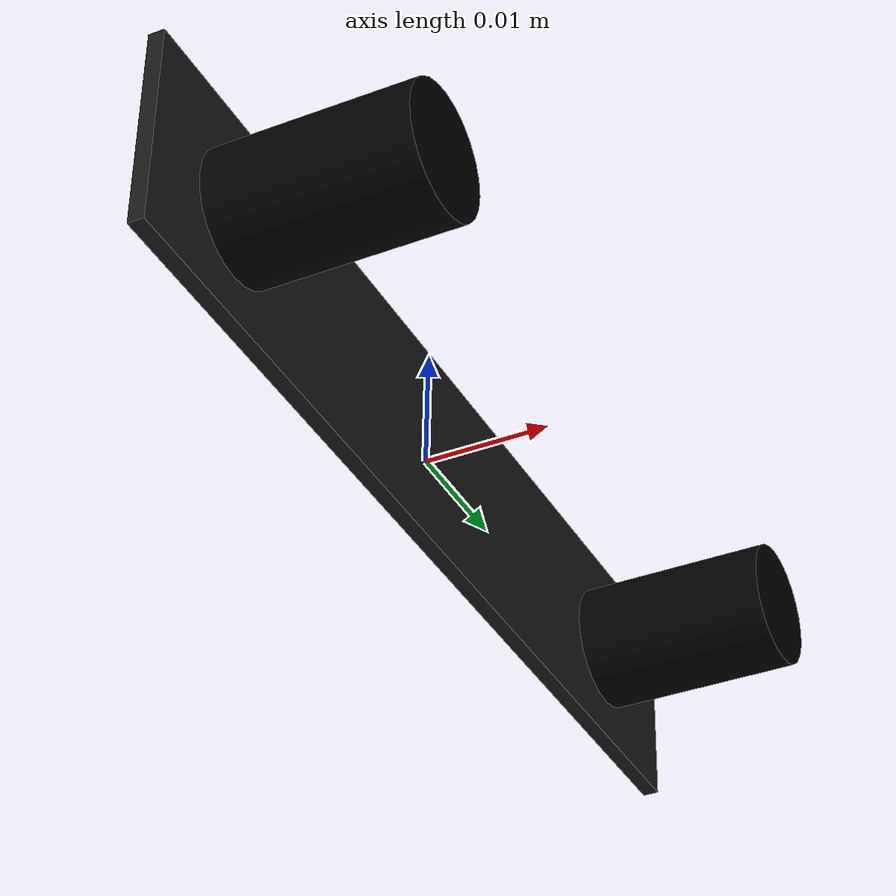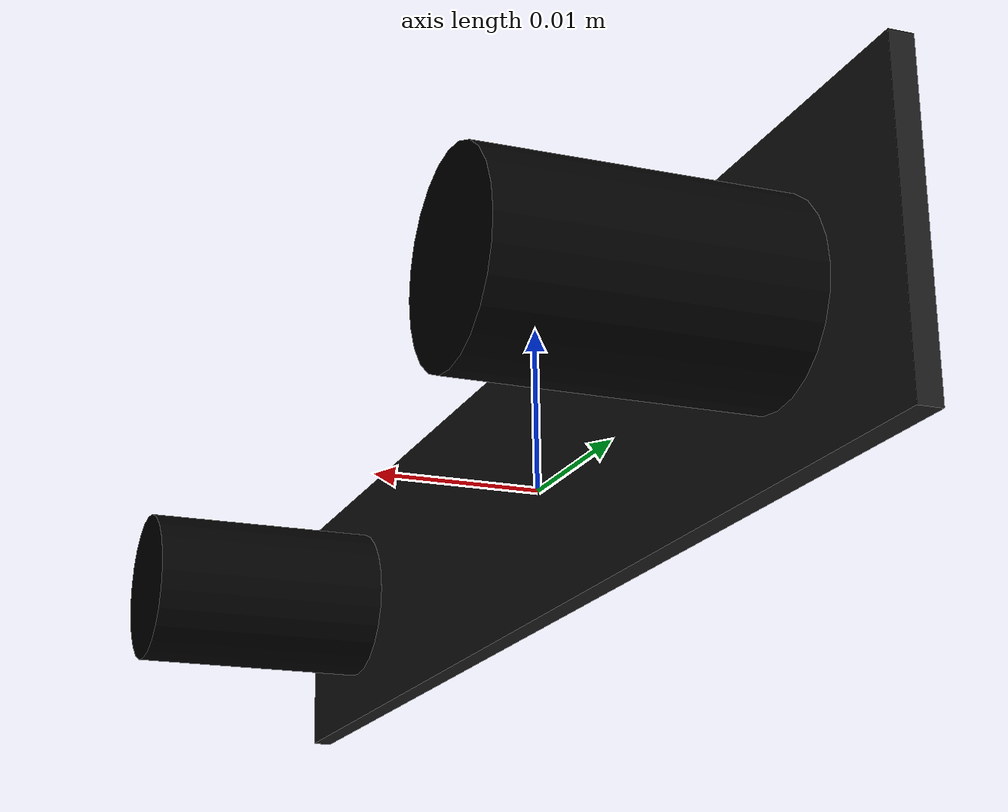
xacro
<?xml version="1.0"?>

<robot name="stereo_description" xmlns:xacro="http://ros.org/wiki/xacro">
  <!-- include the stereo_camera macro -->
  <xacro:include filename="$(find side_x_side_stereo)/description/stereo_camera.urdf.xacro"/>

  <!-- use the stereo_camera macro to create a camera with name "elp" -->
  <xacro:stereo_camera name="stereo"/>
</robot>

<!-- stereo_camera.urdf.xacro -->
<robot name="stereo_camera" xmlns:xacro="http://ros.org/wiki/xacro">
  <xacro:property name="M_PI" value="3.1415926535897931" />
  <xacro:property name="INTEROCULAR" value="0.05908089475073256" />
  <xacro:property name="BOARD_THICKNESS" value="0.00125" />
  <xacro:property name="LENS_LENGTH" value="0.016" />

  <xacro:macro name="stereo_camera" params="name">
    <link name="${name}">
      <visual>
        <geometry>
          <box size="${BOARD_THICKNESS} 0.080 .0164"/>
        </geometry>
        <origin xyz="${BOARD_THICKNESS/2} 0 0"/>
        <material name="gray">
          <color rgba="0.1 0.1 0.1 1"/>
        </material>
      </visual>
    </link>

    <link name="${name}_left_frame">
      <visual>
        <geometry>
          <cylinder length="${LENS_LENGTH}" radius="0.005"/>
        </geometry>
        <origin xyz="${-LENS_LENGTH/2} 0 0" rpy="0 ${M_PI/2} 0"/>
        <material name="black">
          <color rgba="0 0 0 1"/>
        </material>
      </visual>
    </link>

    <link name="${name}_left_optical_frame">
    </link>

    <link name="${name}_right_frame">
      <visual>
        <geometry>
          <cylinder length="${LENS_LENGTH}" radius="0.005"/>
        </geometry>
        <origin xyz="${-LENS_LENGTH/2} 0 0" rpy="0 ${M_PI/2} 0"/>
        <material name="black">
          <color rgba="0 0 0 1"/>
        </material>
      </visual>
    </link>

    <link name="${name}_right_optical_frame">
    </link>

    <joint name="${name}_to_${name}_left_frame" type="fixed">
      <parent link="${name}"/>
      <child link="${name}_left_frame"/>
      <origin xyz="${BOARD_THICKNESS/2 + LENS_LENGTH} ${INTEROCULAR/2} 0"/>
    </joint>

    <joint name="${name}_left_frame_to_${name}_left_optical_frame" type="fixed">
      <parent link="${name}_left_frame"/>
      <child link="${name}_left_optical_frame"/>
      <origin xyz="0 0 0" rpy="${-M_PI/2} 0 ${-M_PI/2}"/>
    </joint>

    <joint name="${name}_to_${name}_right_frame" type="fixed">
      <parent link="${name}"/>
      <child link="${name}_right_frame"/>
      <origin xyz="${BOARD_THICKNESS/2 + LENS_LENGTH} ${-INTEROCULAR/2} 0"/>
    </joint>

    <joint name="${name}_right_frame_to_${name}_right_optical_frame" type="fixed">
      <parent link="${name}_right_frame"/>
      <child link="${name}_right_optical_frame"/>
      <origin xyz="0 0 0" rpy="${-M_PI/2} 0 ${-M_PI/2}"/>
    </joint>
  </xacro:macro>
</robot>
